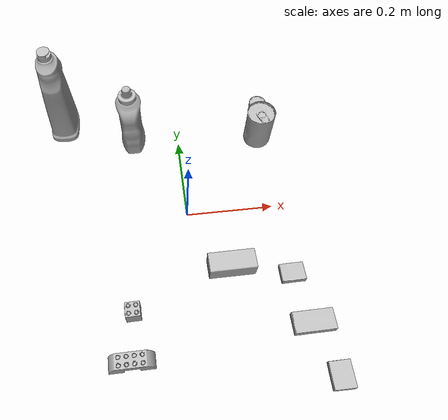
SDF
<?xml version="1.0" ?>
<sdf version="1.4">
  <world name="default">
    <light name="light1" type="point">
      <pose>0 0 1 0 0 0</pose>
      <diffuse>3 3 3 1</diffuse>
      <specular>3 3 3 1</specular>
    </light>
    <light name="light2" type="point">
      <pose>0 0.5 2 0 0 0</pose>
      <diffuse>1 1 1 1</diffuse>
      <specular>1 1 1 1</specular>
    </light>
    <light name="light3" type="point">
      <pose>0 0.5 2 0 0 0</pose>
      <diffuse>3 3 3 1</diffuse>
      <specular>3 3 3 1</specular>
    </light>
    <scene>
      <ambient>0.7 0.7 0.7</ambient>
    </scene>
    <model name="bottle1">
      <link name="link_bottle1">
        <collision name="default">
          <geometry>
            <mesh>
              <uri>model://bleach_cleanser/collision_meshes/collision.obj</uri>
              <scale>1.0 1.0 1.0</scale>
            </mesh>
          </geometry>
          <surface>
            <friction>
              <ode>
                <mu>0.5</mu>
                <mu2>0.5</mu2>
              </ode>
            </friction>
          </surface>
        </collision>
        <visual name="default">
          <geometry>
            <mesh>
              <uri>model://bleach_cleanser/visual_meshes/visual.dae</uri>
              <scale>1.0 1.0 1.0</scale>
            </mesh>
          </geometry>
        </visual>
        <inertial>
          <mass>0.7954697608947754</mass>
          <pose>0.00012193184375064448 0.0037838825955986977 -0.02442161552608013 -0.0738167061583634 0.000420116841178447 -0.006875049257496471</pose>
          <inertia>
            <ixx>0.003871667</ixx>
            <iyy>0.0036078263</iyy>
            <izz>0.00066195446</izz>
            <ixy>0</ixy>
            <ixz>0</ixz>
            <iyz>0</iyz>
          </inertia>
        </inertial>
      </link>
      <pose>-0.2798444926738739 0.289875328540802 0.1257842481136322 -0.00020530852493872586 1.1870372733281497e-05 -0.04239710855870662</pose>
    </model>
    <model name="bottle2">
      <link name="link_bottle2">
        <collision name="default">
          <geometry>
            <mesh>
              <uri>model://mustard_bottle/collision_meshes/collision.obj</uri>
              <scale>1.0 1.0 1.0</scale>
            </mesh>
          </geometry>
          <surface>
            <friction>
              <ode>
                <mu>0.5</mu>
                <mu2>0.5</mu2>
              </ode>
            </friction>
          </surface>
        </collision>
        <visual name="default">
          <geometry>
            <mesh>
              <uri>model://mustard_bottle/visual_meshes/visual.dae</uri>
              <scale>1.0 1.0 1.0</scale>
            </mesh>
          </geometry>
        </visual>
        <inertial>
          <mass>0.5118113160133362</mass>
          <pose>0.0005032453336752951 -0.00015647397958673537 -0.017475785687565804 0.0004182313596805905 0.000946575919178121 0.024853765212265823</pose>
          <inertia>
            <ixx>0.00142123</ixx>
            <iyy>0.0012470091</iyy>
            <izz>0.0003745659</izz>
            <ixy>0</ixy>
            <ixz>0</ixz>
            <iyz>0</iyz>
          </inertia>
        </inertial>
      </link>
      <pose>-0.11161314696073532 0.22877730429172516 0.09611652791500092 0.008103978983835807 -0.007939058282367708 -0.028664578554459703</pose>
    </model>
    <model name="toy1">
      <link name="link_toy1">
        <collision name="default">
          <geometry>
            <mesh>
              <uri>model://b_lego_duplo/collision_meshes/collision.obj</uri>
              <scale>1.0 1.0 1.0</scale>
            </mesh>
          </geometry>
          <surface>
            <friction>
              <ode>
                <mu>0.5</mu>
                <mu2>0.5</mu2>
              </ode>
            </friction>
          </surface>
        </collision>
        <visual name="default">
          <geometry>
            <mesh>
              <uri>model://b_lego_duplo/visual_meshes/visual.dae</uri>
              <scale>1.0 1.0 1.0</scale>
            </mesh>
          </geometry>
        </visual>
        <inertial>
          <mass>0.04622781649231911</mass>
          <pose>-0.00011053043272113428 -9.152668098977301e-06 0.0019294294761493802 -0.037494565787594906 -0.026354503997733224 0.45188645636516256</pose>
          <inertia>
            <ixx>9.46087e-06</ixx>
            <iyy>9.524471e-06</iyy>
            <izz>8.429326e-06</izz>
            <ixy>0</ixy>
            <ixz>0</ixz>
            <iyz>0</iyz>
          </inertia>
        </inertial>
      </link>
      <pose>-0.14000536501407623 -0.2200472056865692 0.02181500941514969 -3.194708275967876e-07 -2.1656452130488757e-07 0.017341991996192796</pose>
    </model>
    <model name="toy2">
      <link name="link_toy2">
        <collision name="default">
          <geometry>
            <mesh>
              <uri>model://e_lego_duplo/collision_meshes/collision.obj</uri>
              <scale>1.0 1.0 1.0</scale>
            </mesh>
          </geometry>
          <surface>
            <friction>
              <ode>
                <mu>0.5</mu>
                <mu2>0.5</mu2>
              </ode>
            </friction>
          </surface>
        </collision>
        <visual name="default">
          <geometry>
            <mesh>
              <uri>model://e_lego_duplo/visual_meshes/visual.dae</uri>
              <scale>1.0 1.0 1.0</scale>
            </mesh>
          </geometry>
        </visual>
        <inertial>
          <mass>0.08809097856283188</mass>
          <pose>0.00032560486579313874 0.00023485404381062835 0.0019521467620506883 -0.022567425824888195 -6.82459351116558e-05 -0.007625145117383363</pose>
          <inertia>
            <ixx>1.836988e-05</ixx>
            <iyy>7.539474e-05</iyy>
            <izz>7.34193e-05</izz>
            <ixy>0</ixy>
            <ixz>0</ixz>
            <iyz>0</iyz>
          </inertia>
        </inertial>
      </link>
      <pose>-0.1498098373413086 -0.3200230896472931 0.02180899679660797 4.348376567920478e-08 -5.012884168940299e-09 0.0073492660991499184</pose>
    </model>
    <model name="can1">
      <link name="link_can1">
        <collision name="default">
          <geometry>
            <mesh>
              <uri>model://tomato_soup_can/collision_meshes/collision.obj</uri>
              <scale>1.0 1.0 1.0</scale>
            </mesh>
          </geometry>
          <surface>
            <friction>
              <ode>
                <mu>0.5</mu>
                <mu2>0.5</mu2>
              </ode>
            </friction>
          </surface>
        </collision>
        <visual name="default">
          <geometry>
            <mesh>
              <uri>model://tomato_soup_can/visual_meshes/visual.dae</uri>
              <scale>1.0 1.0 1.0</scale>
            </mesh>
          </geometry>
        </visual>
        <inertial>
          <mass>0.4347945749759674</mass>
          <pose>0.0001265227037947625 0.00010805525380419567 -0.0017973979702219367 0.007020064127759274 0.0004229940757469139 -0.009903323281130803</pose>
          <inertia>
            <ixx>0.00047671542</ixx>
            <iyy>0.00047396024</iyy>
            <izz>0.00024707714</izz>
            <ixy>0</ixy>
            <ixz>0</ixz>
            <iyz>0</iyz>
          </inertia>
        </inertial>
      </link>
      <pose>0.19994603097438812 0.20000289380550385 0.05127402022480965 -6.49990958148753e-07 -6.557258992603537e-07 -0.015894608013753576</pose>
    </model>
    <model name="can2">
      <link name="link_can2">
        <collision name="default">
          <geometry>
            <mesh>
              <uri>model://tuna_fish_can/collision_meshes/collision.obj</uri>
              <scale>0.5 0.5 0.5</scale>
            </mesh>
          </geometry>
          <surface>
            <friction>
              <ode>
                <mu>0.5</mu>
                <mu2>0.5</mu2>
              </ode>
            </friction>
          </surface>
        </collision>
        <visual name="default">
          <geometry>
            <mesh>
              <uri>model://tuna_fish_can/visual_meshes/visual.dae</uri>
              <scale>0.5 0.5 0.5</scale>
            </mesh>
          </geometry>
        </visual>
        <inertial>
          <mass>0.02951119653880596</mass>
          <pose>-2.0361847418826073e-05 -7.256335720740026e-06 -0.0005269026733003557 -0.0017944763161136105 0.00017161533088142807 0.2405366956082085</pose>
          <inertia>
            <ixx>3.989958e-06</ixx>
            <iyy>3.9733272e-06</iyy>
            <izz>6.827389e-06</izz>
            <ixy>0</ixy>
            <ixz>0</ixz>
            <iyz>0</iyz>
          </inertia>
        </inertial>
      </link>
      <pose>0.21997669339179993 0.30002450942993164 0.00851999968290329 -1.0094824946758092e-08 2.0505514101054514e-08 -0.07142903095431329</pose>
    </model>
    <model name="box1">
      <link name="link_box1">
        <collision name="default">
          <geometry>
            <mesh>
              <uri>model://sugar_box/collision_meshes/collision.obj</uri>
              <scale>0.5 0.5 0.5</scale>
            </mesh>
          </geometry>
          <surface>
            <friction>
              <ode>
                <mu>0.5</mu>
                <mu2>0.5</mu2>
              </ode>
            </friction>
          </surface>
        </collision>
        <visual name="default">
          <geometry>
            <mesh>
              <uri>model://sugar_box/visual_meshes/visual.dae</uri>
              <scale>0.5 0.5 0.5</scale>
            </mesh>
          </geometry>
        </visual>
        <inertial>
          <mass>0.10932230949401855</mass>
          <pose>0.0005171863595023751 1.924554817378521e-05 -0.00018182402709499002 -0.00040462630024242077 0.0010506636385781449 0.0026153787888990553</pose>
          <inertia>
            <ixx>2.277176e-05</ixx>
            <iyy>7.3603005e-05</iyy>
            <izz>8.811158e-05</izz>
            <ixy>0</ixy>
            <ixz>0</ixz>
            <iyz>0</iyz>
          </inertia>
        </inertial>
      </link>
      <pose>0.22952277958393097 -0.2801334857940674 0.011399305425584316 0.0007749330877470238 -0.023433167389901696 0.00023494233715436563</pose>
    </model>
    <model name="box2">
      <link name="link_box2">
        <collision name="default">
          <geometry>
            <mesh>
              <uri>model://pudding_box/collision_meshes/collision.obj</uri>
              <scale>0.5 0.5 0.5</scale>
            </mesh>
          </geometry>
          <surface>
            <friction>
              <ode>
                <mu>0.5</mu>
                <mu2>0.5</mu2>
              </ode>
            </friction>
          </surface>
        </collision>
        <visual name="default">
          <geometry>
            <mesh>
              <uri>model://pudding_box/visual_meshes/visual.dae</uri>
              <scale>0.5 0.5 0.5</scale>
            </mesh>
          </geometry>
        </visual>
        <inertial>
          <mass>0.061322033405303955</mass>
          <pose>0.00024474109522998333 0.00040339428232982755 -0.0002594413817860186 0.0052131013423229325 -0.006603797777692156 0.020079823300565562</pose>
          <inertia>
            <ixx>1.733035e-05</ixx>
            <iyy>1.1659984e-05</iyy>
            <izz>2.559279e-05</izz>
            <ixy>0</ixy>
            <ixz>0</ixz>
            <iyz>0</iyz>
          </inertia>
        </inertial>
      </link>
      <pose>0.25974133610725403 -0.39025208353996277 0.009862901642918587 0.02234867051472659 -0.011391603663987414 -9.413557726179933e-05</pose>
    </model>
    <model name="box3">
      <link name="link_box3">
        <collision name="default">
          <geometry>
            <mesh>
              <uri>model://cracker_box/collision_meshes/collision.obj</uri>
              <scale>0.25 0.25 0.25</scale>
            </mesh>
          </geometry>
          <surface>
            <friction>
              <ode>
                <mu>0.5</mu>
                <mu2>0.5</mu2>
              </ode>
            </friction>
          </surface>
        </collision>
        <visual name="default">
          <geometry>
            <mesh>
              <uri>model://cracker_box/visual_meshes/visual.dae</uri>
              <scale>0.25 0.25 0.25</scale>
            </mesh>
          </geometry>
        </visual>
        <inertial>
          <mass>0.05027599632740021</mass>
          <pose>0.00023660380975343287 6.358561222441494e-05 -0.00042573834070935845 -0.0003162076618733006 -0.011106490531610344 0.00254679570085012</pose>
          <inertia>
            <ixx>7.992481e-06</ixx>
            <iyy>1.3197154e-05</iyy>
            <izz>1.8833553e-05</izz>
            <ixy>0</ixy>
            <ixz>0</ixz>
            <iyz>0</iyz>
          </inertia>
        </inertial>
      </link>
      <pose>0.20993340015411377 -0.1698499470949173 0.009120451286435127 -0.011788900956885496 -0.0073665059008117435 0.00012829483072918768</pose>
    </model>
    <model name="box4">
      <link name="link_box4">
        <collision name="default">
          <geometry>
            <mesh>
              <uri>model://wood_block/collision_meshes/collision.obj</uri>
              <scale>0.5 0.5 0.5</scale>
            </mesh>
          </geometry>
          <surface>
            <friction>
              <ode>
                <mu>0.5</mu>
                <mu2>0.5</mu2>
              </ode>
            </friction>
          </surface>
        </collision>
        <visual name="default">
          <geometry>
            <mesh>
              <uri>model://wood_block/visual_meshes/visual.dae</uri>
              <scale>0.5 0.5 0.5</scale>
            </mesh>
          </geometry>
        </visual>
        <inertial>
          <mass>0.30035653710365295</mass>
          <pose>-2.9066577553749084e-06 -0.000285404734313488 0.00013204291462898254 -0.05221128362191582 -0.005192695718477931 -0.0068613783725326285</pose>
          <inertia>
            <ixx>0.00010048062</ixx>
            <iyy>0.00031741828</iyy>
            <izz>0.00031623102</izz>
            <ixy>0</ixy>
            <ixz>0</ixz>
            <iyz>0</iyz>
          </inertia>
        </inertial>
      </link>
      <pose>0.07994170486927032 -0.13943439722061157 0.022629253566265106 -0.005208557254263686 0.005718727332833967 0.005303076351169205</pose>
    </model>
  </world>
</sdf>
